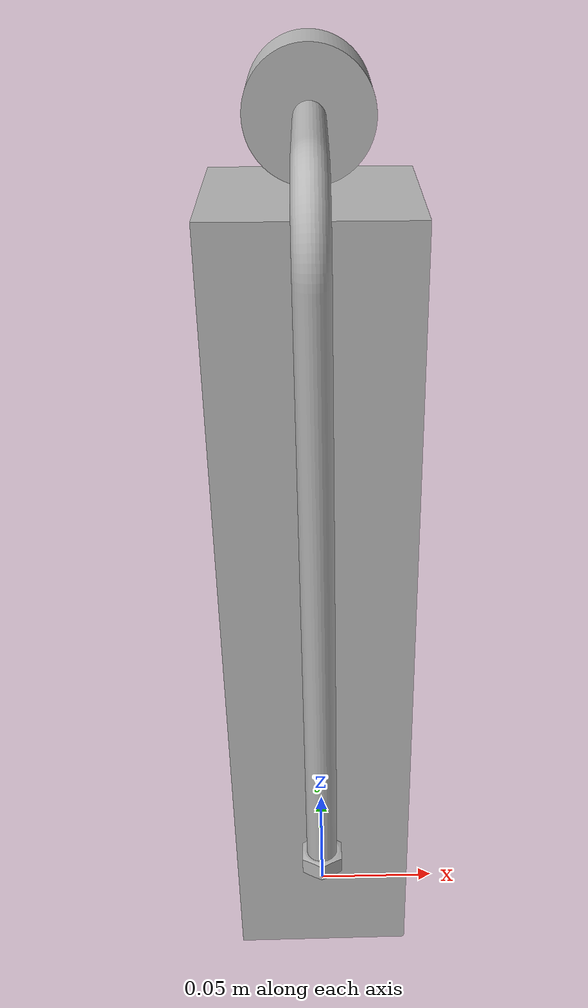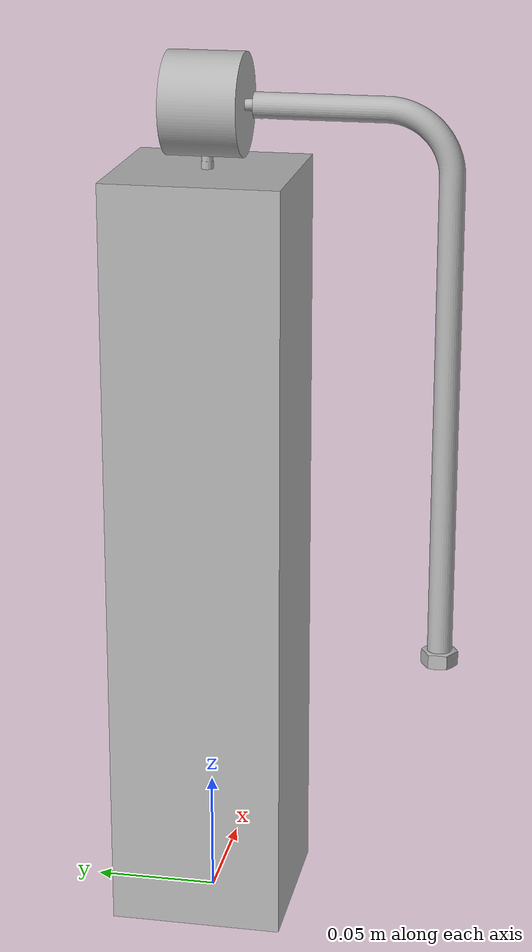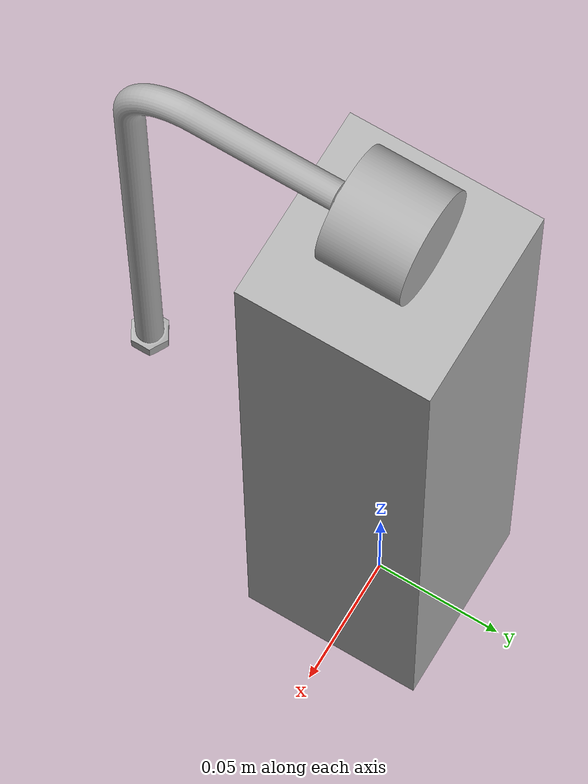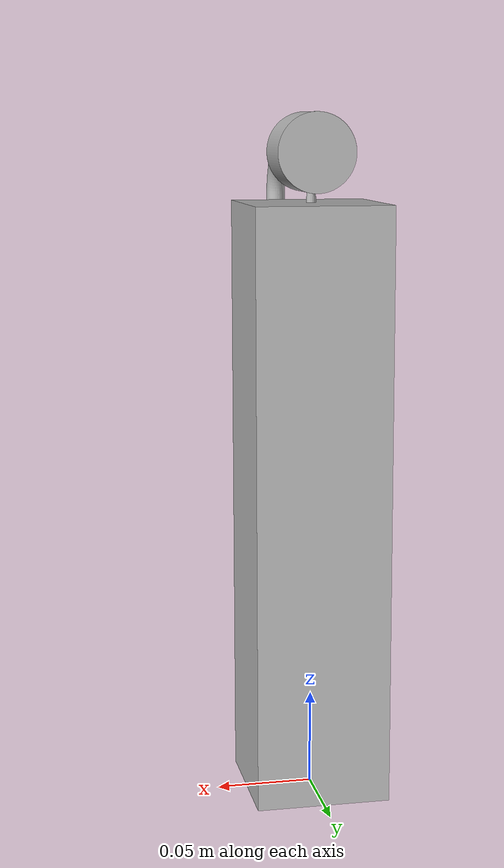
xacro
<?xml version="1.0" ?>
<robot name="Pendel" xmlns:xacro="http://www.ros.org/wiki/xacro">

  <xacro:include filename="materials.xacro" />
  <xacro:include filename="Pendel.trans" />
  <xacro:include filename="Pendel.gazebo" />

  <link name="base_link">
    <inertial>
      <origin xyz="3.592221998570457e-17 0.0 0.15501107810631898" rpy="0 0 0"/>
      <mass value="11.924986949735343"/>
      <inertia ixx="0.100382" iyy="0.100382" izz="0.009738" ixy="0.0" iyz="0.0" ixz="-0.0"/>
    </inertial>
    <visual>
      <origin xyz="0 0 0" rpy="0 0 0"/>
      <geometry>
        <mesh filename="../meshes/base_link.stl" scale="0.001 0.001 0.001"/>
      </geometry>
      <material name="silver"/>
    </visual>
    <collision>
      <origin xyz="0 0 0" rpy="0 0 0"/>
      <geometry>
        <mesh filename="../meshes/base_link.stl" scale="0.001 0.001 0.001"/>
      </geometry>
    </collision>
  </link>

  <link name="Pendel_1">
    <inertial>
      <origin xyz="7.53053905616492e-07 -0.057182054209378205 -0.12050399497646608" rpy="0 0 0"/>
      <mass value="0.01740539597679812"/>
      <inertia ixx="0.000136" iyy="0.000131" izz="6e-06" ixy="0.0" iyz="-1.6e-05" ixz="0.0"/>
    </inertial>
    <visual>
      <origin xyz="-0.0 0.0295 -0.335002" rpy="0 0 0"/>
      <geometry>
        <mesh filename="../meshes/Pendel_1.stl" scale="0.001 0.001 0.001"/>
      </geometry>
      <material name="silver"/>
    </visual>
    <collision>
      <origin xyz="-0.0 0.0295 -0.335002" rpy="0 0 0"/>
      <geometry>
        <mesh filename="../meshes/Pendel_1.stl" scale="0.001 0.001 0.001"/>
      </geometry>
    </collision>
  </link>

  <link name="Encoder_1">
    <inertial>
      <origin xyz="4.2822283207196315e-08 -0.00013534763535349713 0.01901143495877572" rpy="0 0 0"/>
      <mass value="0.1023589961334875"/>
      <inertia ixx="1.8e-05" iyy="2e-05" izz="1.8e-05" ixy="-0.0" iyz="-0.0" ixz="0.0"/>
    </inertial>
    <visual>
      <origin xyz="-0.0 -0.0 -0.316" rpy="0 0 0"/>
      <geometry>
        <mesh filename="../meshes/Encoder_1.stl" scale="0.001 0.001 0.001"/>
      </geometry>
      <material name="silver"/>
    </visual>
    <collision>
      <origin xyz="-0.0 -0.0 -0.316" rpy="0 0 0"/>
      <geometry>
        <mesh filename="../meshes/Encoder_1.stl" scale="0.001 0.001 0.001"/>
      </geometry>
    </collision>
  </link>

  <joint name="pendelGelenk" type="continuous">
    <origin xyz="0.0 -0.0295 0.019002" rpy="0 0 0"/>
    <parent link="Encoder_1"/>
    <child link="Pendel_1"/>
    <axis xyz="0.0 -1.0 0.0"/>
  </joint>

  <joint name="rotaryGelenk" type="revolute">
    <origin xyz="0.0 0.0 0.316" rpy="0 0 0"/>
    <parent link="base_link"/>
    <child link="Encoder_1"/>
    <axis xyz="0.0 0.0 1.0"/>
    <limit upper="0.0" lower="-6.283185" effort="100" velocity="100"/>
  </joint>

</robot>

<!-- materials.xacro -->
<robot name="Pendel" xmlns:xacro="http://www.ros.org/wiki/xacro" >

<material name="silver">
  <color rgba="0.700 0.700 0.700 1.000"/>
</material>

</robot>

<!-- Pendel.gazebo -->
<robot name="Pendel" xmlns:xacro="http://www.ros.org/wiki/xacro" >

<xacro:property name="body_color" value="Gazebo/Silver" />

<gazebo>
  <plugin name="control" filename="libgazebo_ros_control.so"/>
</gazebo>
<gazebo reference="base_link">
  <material>${body_color}</material>
  <mu1>0.2</mu1>
  <mu2>0.2</mu2>
  <selfCollide>true</selfCollide>
  <gravity>true</gravity>
</gazebo>

<gazebo reference="Pendel_1">
  <material>${body_color}</material>
  <mu1>0.2</mu1>
  <mu2>0.2</mu2>
  <selfCollide>true</selfCollide>
</gazebo>

<gazebo reference="Encoder_1">
  <material>${body_color}</material>
  <mu1>0.2</mu1>
  <mu2>0.2</mu2>
  <selfCollide>true</selfCollide>
</gazebo>

</robot>
